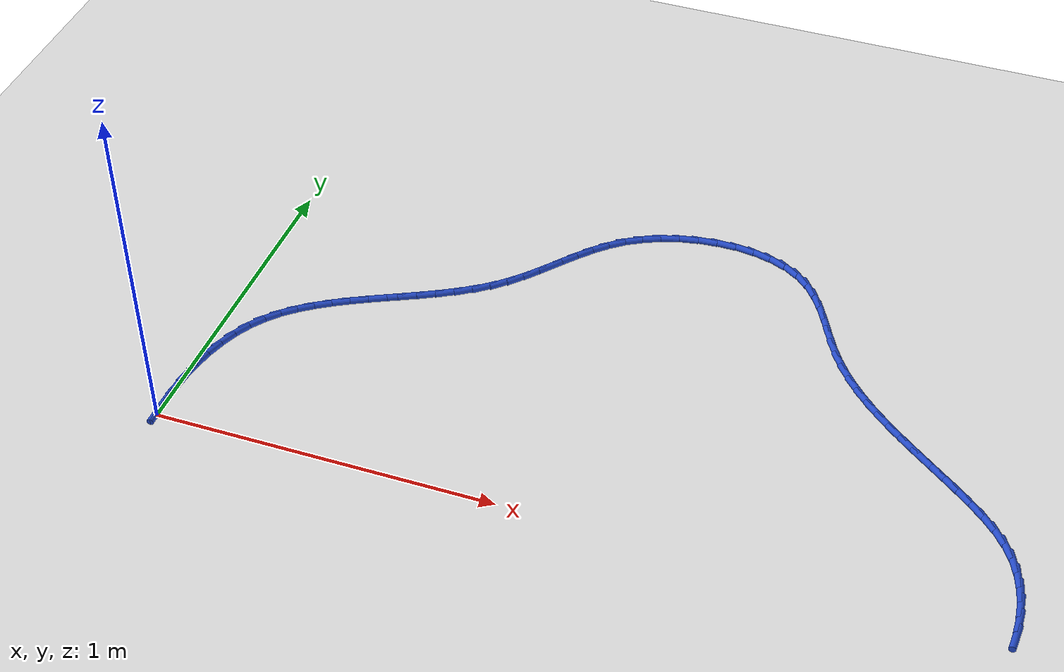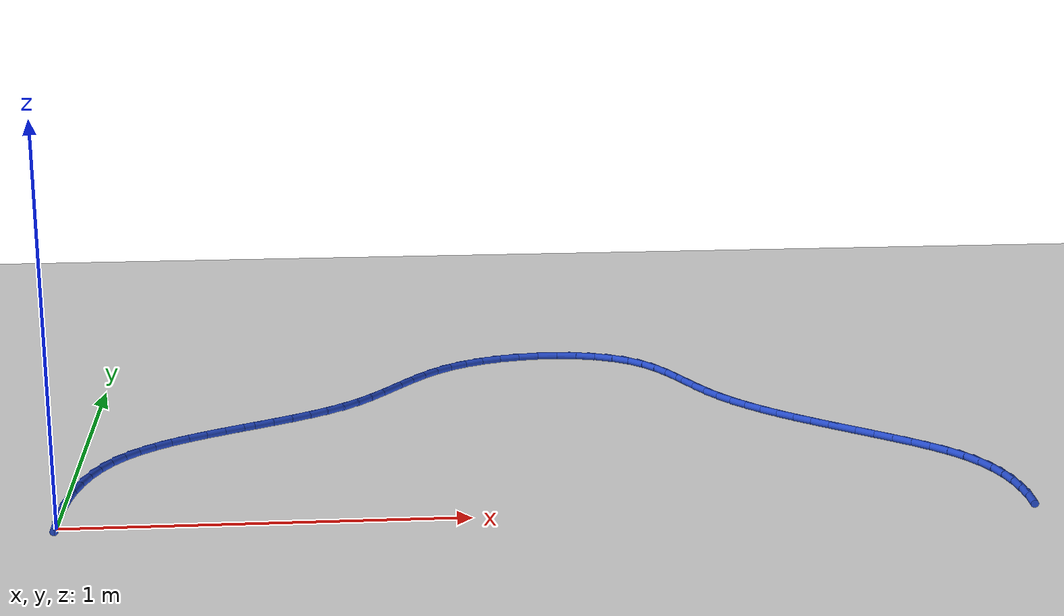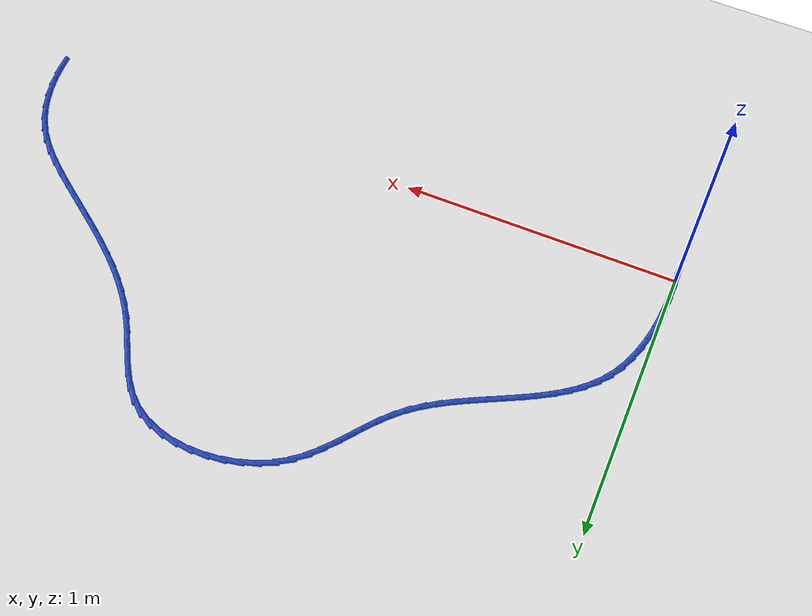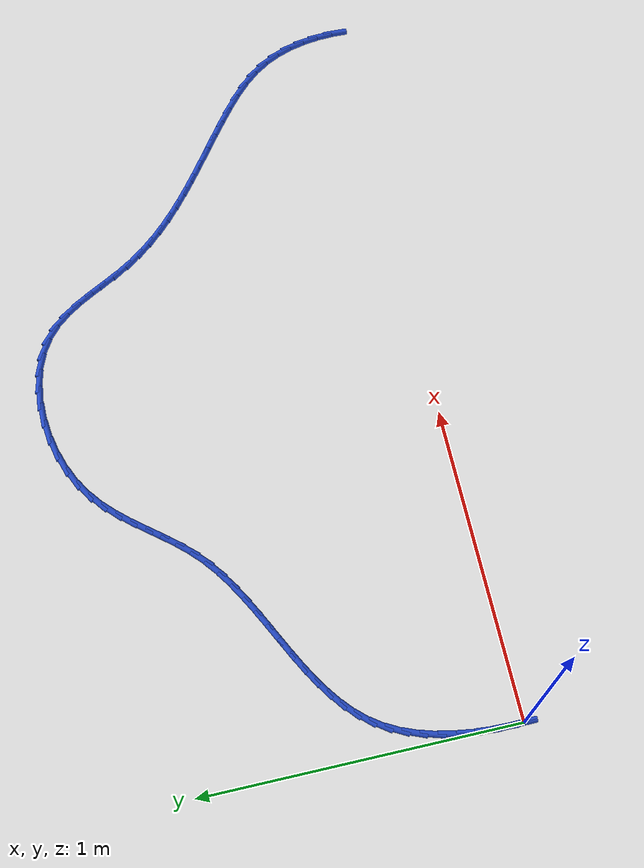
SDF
<sdf version="1.6">
 <world name="default">
  <model name="ground_plane">
   <static>1</static>
   <link name="link">
    <collision name="collision">
     <geometry><plane><normal>0 0 1</normal><size>100 100</size></plane></geometry>
     <surface><friction><ode><mu>100</mu><mu2>50</mu2></ode></friction></surface>
    </collision>
    <visual name="visual">
     <cast_shadows>0</cast_shadows>
     <geometry><plane><normal>0 0 1</normal><size>100 100</size></plane></geometry>
     <material>
      <script><uri>file://media/materials/scripts/gazebo.material</uri><name>Gazebo/WhiteGlow</name></script>
     </material>
    </visual>
   </link>
  </model>
  <model name="line">
   <link name="link_0">
    <pose>-3.209238430557093e-17 -2.7755575615628914e-17 0.01 0 1.57 -1.5614146785968823</pose>
    <collision name="collision">
     <geometry><cylinder><radius>0.01</radius><length>0.08</length></cylinder></geometry>
    </collision>
    <visual name="visual">
     <material>
      <script><name>Gazebo/Blue</name><uri>file://media/materials/scripts/gazebo.material</uri></script>
     </material>
     <geometry><cylinder><radius>0.01</radius><length>0.08</length></cylinder></geometry>
    </visual>
   </link>
   <link name="link_1">
    <pose>-0.0005205562509979723 0.055485024338224574 0.01 0 1.57 1.5336357734559047</pose>
    <collision name="collision">
     <geometry><cylinder><radius>0.01</radius><length>0.08</length></cylinder></geometry>
    </collision>
    <visual name="visual">
     <material>
      <script><name>Gazebo/Blue</name><uri>file://media/materials/scripts/gazebo.material</uri></script>
     </material>
     <geometry><cylinder><radius>0.01</radius><length>0.08</length></cylinder></geometry>
    </visual>
   </link>
   <link name="link_2">
    <pose>0.001552704836371046 0.11125132722052263 0.01 0 1.57 1.4807161224466192</pose>
    <collision name="collision">
     <geometry><cylinder><radius>0.01</radius><length>0.08</length></cylinder></geometry>
    </collision>
    <visual name="visual">
     <material>
      <script><name>Gazebo/Blue</name><uri>file://media/materials/scripts/gazebo.material</uri></script>
     </material>
     <geometry><cylinder><radius>0.01</radius><length>0.08</length></cylinder></geometry>
    </visual>
   </link>
   <link name="link_3">
    <pose>0.006558838137702357 0.16667510590002396 0.01 0 1.57 1.4199414933770682</pose>
    <collision name="collision">
     <geometry><cylinder><radius>0.01</radius><length>0.08</length></cylinder></geometry>
    </collision>
    <visual name="visual">
     <material>
      <script><name>Gazebo/Blue</name><uri>file://media/materials/scripts/gazebo.material</uri></script>
     </material>
     <geometry><cylinder><radius>0.01</radius><length>0.08</length></cylinder></geometry>
    </visual>
   </link>
   <link name="link_4">
    <pose>0.014836898528591292 0.2211325576298585 0.01 0 1.57 1.349591802387273</pose>
    <collision name="collision">
     <geometry><cylinder><radius>0.01</radius><length>0.08</length></cylinder></geometry>
    </collision>
    <visual name="visual">
     <material>
      <script><name>Gazebo/Blue</name><uri>file://media/materials/scripts/gazebo.material</uri></script>
     </material>
     <geometry><cylinder><radius>0.01</radius><length>0.08</length></cylinder></geometry>
    </visual>
   </link>
   <link name="link_5">
    <pose>0.026725940884633204 0.2739998796631563 0.01 0 1.57 1.2677335016240336</pose>
    <collision name="collision">
     <geometry><cylinder><radius>0.01</radius><length>0.08</length></cylinder></geometry>
    </collision>
    <visual name="visual">
     <material>
      <script><name>Gazebo/Blue</name><uri>file://media/materials/scripts/gazebo.material</uri></script>
     </material>
     <geometry><cylinder><radius>0.01</radius><length>0.08</length></cylinder></geometry>
    </visual>
   </link>
   <link name="link_6">
    <pose>0.04256502008142346 0.32465326925304727 0.01 0 1.57 1.1723580194442573</pose>
    <collision name="collision">
     <geometry><cylinder><radius>0.01</radius><length>0.08</length></cylinder></geometry>
    </collision>
    <visual name="visual">
     <material>
      <script><name>Gazebo/Blue</name><uri>file://media/materials/scripts/gazebo.material</uri></script>
     </material>
     <geometry><cylinder><radius>0.01</radius><length>0.08</length></cylinder></geometry>
    </visual>
   </link>
   <link name="link_7">
    <pose>0.06269319099455734 0.3724689236526614 0.01 0 1.57 1.0617163003641088</pose>
    <collision name="collision">
     <geometry><cylinder><radius>0.01</radius><length>0.08</length></cylinder></geometry>
    </collision>
    <visual name="visual">
     <material>
      <script><name>Gazebo/Blue</name><uri>file://media/materials/scripts/gazebo.material</uri></script>
     </material>
     <geometry><cylinder><radius>0.01</radius><length>0.08</length></cylinder></geometry>
    </visual>
   </link>
   <link name="link_8">
    <pose>0.08744950849963024 0.4168230401151284 0.01 0 1.57 0.9359584628961841</pose>
    <collision name="collision">
     <geometry><cylinder><radius>0.01</radius><length>0.08</length></cylinder></geometry>
    </collision>
    <visual name="visual">
     <material>
      <script><name>Gazebo/Blue</name><uri>file://media/materials/scripts/gazebo.material</uri></script>
     </material>
     <geometry><cylinder><radius>0.01</radius><length>0.08</length></cylinder></geometry>
    </visual>
   </link>
   <link name="link_9">
    <pose>0.1171396823556434 0.45713278753878056 0.01 0 1.57 0.8124300084330521</pose>
    <collision name="collision">
     <geometry><cylinder><radius>0.01</radius><length>0.08</length></cylinder></geometry>
    </collision>
    <visual name="visual">
     <material>
      <script><name>Gazebo/Blue</name><uri>file://media/materials/scripts/gazebo.material</uri></script>
     </material>
     <geometry><cylinder><radius>0.01</radius><length>0.08</length></cylinder></geometry>
    </visual>
   </link>
   <link name="link_10">
    <pose>0.15154909743121658 0.4934546658237896 0.01 0 1.57 0.7070448001785046</pose>
    <collision name="collision">
     <geometry><cylinder><radius>0.01</radius><length>0.08</length></cylinder></geometry>
    </collision>
    <visual name="visual">
     <material>
      <script><name>Gazebo/Blue</name><uri>file://media/materials/scripts/gazebo.material</uri></script>
     </material>
     <geometry><cylinder><radius>0.01</radius><length>0.08</length></cylinder></geometry>
    </visual>
   </link>
   <link name="link_11">
    <pose>0.19005136541638057 0.5263511267547449 0.01 0 1.57 0.6214748167838323</pose>
    <collision name="collision">
     <geometry><cylinder><radius>0.01</radius><length>0.08</length></cylinder></geometry>
    </collision>
    <visual name="visual">
     <material>
      <script><name>Gazebo/Blue</name><uri>file://media/materials/scripts/gazebo.material</uri></script>
     </material>
     <geometry><cylinder><radius>0.01</radius><length>0.08</length></cylinder></geometry>
    </visual>
   </link>
   <link name="link_12">
    <pose>0.23200883649902734 0.556398459292926 0.01 0 1.57 0.5552211963426452</pose>
    <collision name="collision">
     <geometry><cylinder><radius>0.01</radius><length>0.08</length></cylinder></geometry>
    </collision>
    <visual name="visual">
     <material>
      <script><name>Gazebo/Blue</name><uri>file://media/materials/scripts/gazebo.material</uri></script>
     </material>
     <geometry><cylinder><radius>0.01</radius><length>0.08</length></cylinder></geometry>
    </visual>
   </link>
   <link name="link_13">
    <pose>0.27678386086704926 0.5841729523996128 0.01 0 1.57 0.5069662121934</pose>
    <collision name="collision">
     <geometry><cylinder><radius>0.01</radius><length>0.08</length></cylinder></geometry>
    </collision>
    <visual name="visual">
     <material>
      <script><name>Gazebo/Blue</name><uri>file://media/materials/scripts/gazebo.material</uri></script>
     </material>
     <geometry><cylinder><radius>0.01</radius><length>0.08</length></cylinder></geometry>
    </visual>
   </link>
   <link name="link_14">
    <pose>0.32373878870833805 0.6102508950360845 0.01 0 1.57 0.4752760883697195</pose>
    <collision name="collision">
     <geometry><cylinder><radius>0.01</radius><length>0.08</length></cylinder></geometry>
    </collision>
    <visual name="visual">
     <material>
      <script><name>Gazebo/Blue</name><uri>file://media/materials/scripts/gazebo.material</uri></script>
     </material>
     <geometry><cylinder><radius>0.01</radius><length>0.08</length></cylinder></geometry>
    </visual>
   </link>
   <link name="link_15">
    <pose>0.3722359702107862 0.6352085761636213 0.01 0 1.57 0.45898621706773857</pose>
    <collision name="collision">
     <geometry><cylinder><radius>0.01</radius><length>0.08</length></cylinder></geometry>
    </collision>
    <visual name="visual">
     <material>
      <script><name>Gazebo/Blue</name><uri>file://media/materials/scripts/gazebo.material</uri></script>
     </material>
     <geometry><cylinder><radius>0.01</radius><length>0.08</length></cylinder></geometry>
    </visual>
   </link>
   <link name="link_16">
    <pose>0.4216377555622856 0.6596222847435024 0.01 0 1.57 0.4573731121157386</pose>
    <collision name="collision">
     <geometry><cylinder><radius>0.01</radius><length>0.08</length></cylinder></geometry>
    </collision>
    <visual name="visual">
     <material>
      <script><name>Gazebo/Blue</name><uri>file://media/materials/scripts/gazebo.material</uri></script>
     </material>
     <geometry><cylinder><radius>0.01</radius><length>0.08</length></cylinder></geometry>
    </visual>
   </link>
   <link name="link_17">
    <pose>0.47130649495072846 0.6840683097370076 0.01 0 1.57 0.47020806818069877</pose>
    <collision name="collision">
     <geometry><cylinder><radius>0.01</radius><length>0.08</length></cylinder></geometry>
    </collision>
    <visual name="visual">
     <material>
      <script><name>Gazebo/Blue</name><uri>file://media/materials/scripts/gazebo.material</uri></script>
     </material>
     <geometry><cylinder><radius>0.01</radius><length>0.08</length></cylinder></geometry>
    </visual>
   </link>
   <link name="link_18">
    <pose>0.5206045385640068 0.7091229401054167 0.01 0 1.57 0.4977443730266458</pose>
    <collision name="collision">
     <geometry><cylinder><radius>0.01</radius><length>0.08</length></cylinder></geometry>
    </collision>
    <visual name="visual">
     <material>
      <script><name>Gazebo/Blue</name><uri>file://media/materials/scripts/gazebo.material</uri></script>
     </material>
     <geometry><cylinder><radius>0.01</radius><length>0.08</length></cylinder></geometry>
    </visual>
   </link>
   <link name="link_19">
    <pose>0.5688942365900129 0.7353624648100091 0.01 0 1.57 0.5406478338676475</pose>
    <collision name="collision">
     <geometry><cylinder><radius>0.01</radius><length>0.08</length></cylinder></geometry>
    </collision>
    <visual name="visual">
     <material>
      <script><name>Gazebo/Blue</name><uri>file://media/materials/scripts/gazebo.material</uri></script>
     </material>
     <geometry><cylinder><radius>0.01</radius><length>0.08</length></cylinder></geometry>
    </visual>
   </link>
   <link name="link_20">
    <pose>0.6155379392166385 0.7633631728120643 0.01 0 1.57 0.5998438492626406</pose>
    <collision name="collision">
     <geometry><cylinder><radius>0.01</radius><length>0.08</length></cylinder></geometry>
    </collision>
    <visual name="visual">
     <material>
      <script><name>Gazebo/Blue</name><uri>file://media/materials/scripts/gazebo.material</uri></script>
     </material>
     <geometry><cylinder><radius>0.01</radius><length>0.08</length></cylinder></geometry>
    </visual>
   </link>
   <link name="link_21">
    <pose>0.6598979966317762 0.7937013530728624 0.01 0 1.57 0.6762243494167626</pose>
    <collision name="collision">
     <geometry><cylinder><radius>0.01</radius><length>0.08</length></cylinder></geometry>
    </collision>
    <visual name="visual">
     <material>
      <script><name>Gazebo/Blue</name><uri>file://media/materials/scripts/gazebo.material</uri></script>
     </material>
     <geometry><cylinder><radius>0.01</radius><length>0.08</length></cylinder></geometry>
    </visual>
   </link>
   <link name="link_22">
    <pose>0.7013367590233177 0.8269532945536828 0.01 0 1.57 0.7662512962271709</pose>
    <collision name="collision">
     <geometry><cylinder><radius>0.01</radius><length>0.08</length></cylinder></geometry>
    </collision>
    <visual name="visual">
     <material>
      <script><name>Gazebo/Blue</name><uri>file://media/materials/scripts/gazebo.material</uri></script>
     </material>
     <geometry><cylinder><radius>0.01</radius><length>0.08</length></cylinder></geometry>
    </visual>
   </link>
   <link name="link_23">
    <pose>0.7393667247765066 0.8635541394446191 0.01 0 1.57 0.8397741431615209</pose>
    <collision name="collision">
     <geometry><cylinder><radius>0.01</radius><length>0.08</length></cylinder></geometry>
    </collision>
    <visual name="visual">
     <material>
      <script><name>Gazebo/Blue</name><uri>file://media/materials/scripts/gazebo.material</uri></script>
     </material>
     <geometry><cylinder><radius>0.01</radius><length>0.08</length></cylinder></geometry>
    </visual>
   </link>
   <link name="link_24">
    <pose>0.7746300123092579 0.9028771309380333 0.01 0 1.57 0.8827204094085778</pose>
    <collision name="collision">
     <geometry><cylinder><radius>0.01</radius><length>0.08</length></cylinder></geometry>
    </collision>
    <visual name="visual">
     <material>
      <script><name>Gazebo/Blue</name><uri>file://media/materials/scripts/gazebo.material</uri></script>
     </material>
     <geometry><cylinder><radius>0.01</radius><length>0.08</length></cylinder></geometry>
    </visual>
   </link>
   <link name="link_25">
    <pose>0.8082829446928788 0.9438121342847895 0.01 0 1.57 0.8952619379264949</pose>
    <collision name="collision">
     <geometry><cylinder><radius>0.01</radius><length>0.08</length></cylinder></geometry>
    </collision>
    <visual name="visual">
     <material>
      <script><name>Gazebo/Blue</name><uri>file://media/materials/scripts/gazebo.material</uri></script>
     </material>
     <geometry><cylinder><radius>0.01</radius><length>0.08</length></cylinder></geometry>
    </visual>
   </link>
   <link name="link_26">
    <pose>0.8414844448118042 0.9852465707821457 0.01 0 1.57 0.8776323635891689</pose>
    <collision name="collision">
     <geometry><cylinder><radius>0.01</radius><length>0.08</length></cylinder></geometry>
    </collision>
    <visual name="visual">
     <material>
      <script><name>Gazebo/Blue</name><uri>file://media/materials/scripts/gazebo.material</uri></script>
     </material>
     <geometry><cylinder><radius>0.01</radius><length>0.08</length></cylinder></geometry>
    </visual>
   </link>
   <link name="link_27">
    <pose>0.8753934355504674 1.0260678617273593 0.01 0 1.57 0.8297142529982583</pose>
    <collision name="collision">
     <geometry><cylinder><radius>0.01</radius><length>0.08</length></cylinder></geometry>
    </collision>
    <visual name="visual">
     <material>
      <script><name>Gazebo/Blue</name><uri>file://media/materials/scripts/gazebo.material</uri></script>
     </material>
     <geometry><cylinder><radius>0.01</radius><length>0.08</length></cylinder></geometry>
    </visual>
   </link>
   <link name="link_28">
    <pose>0.9111688397933033 1.065163428417688 0.01 0 1.57 0.7515243078582637</pose>
    <collision name="collision">
     <geometry><cylinder><radius>0.01</radius><length>0.08</length></cylinder></geometry>
    </collision>
    <visual name="visual">
     <material>
      <script><name>Gazebo/Blue</name><uri>file://media/materials/scripts/gazebo.material</uri></script>
     </material>
     <geometry><cylinder><radius>0.01</radius><length>0.08</length></cylinder></geometry>
    </visual>
   </link>
   <link name="link_29">
    <pose>0.9499695804247452 1.10142069215039 0.01 0 1.57 0.6445073177646926</pose>
    <collision name="collision">
     <geometry><cylinder><radius>0.01</radius><length>0.08</length></cylinder></geometry>
    </collision>
    <visual name="visual">
     <material>
      <script><name>Gazebo/Blue</name><uri>file://media/materials/scripts/gazebo.material</uri></script>
     </material>
     <geometry><cylinder><radius>0.01</radius><length>0.08</length></cylinder></geometry>
    </visual>
   </link>
   <link name="link_30">
    <pose>0.9929545803292275 1.1337270742227226 0.01 0 1.57 0.5175565829299796</pose>
    <collision name="collision">
     <geometry><cylinder><radius>0.01</radius><length>0.08</length></cylinder></geometry>
    </collision>
    <visual name="visual">
     <material>
      <script><name>Gazebo/Blue</name><uri>file://media/materials/scripts/gazebo.material</uri></script>
     </material>
     <geometry><cylinder><radius>0.01</radius><length>0.08</length></cylinder></geometry>
    </visual>
   </link>
   <link name="link_31">
    <pose>1.0409971290331534 1.1610787503493143 0.01 0 1.57 0.3972609409740882</pose>
    <collision name="collision">
     <geometry><cylinder><radius>0.01</radius><length>0.08</length></cylinder></geometry>
    </collision>
    <visual name="visual">
     <material>
      <script><name>Gazebo/Blue</name><uri>file://media/materials/scripts/gazebo.material</uri></script>
     </material>
     <geometry><cylinder><radius>0.01</radius><length>0.08</length></cylinder></geometry>
    </visual>
   </link>
   <link name="link_32">
    <pose>1.0934056670109984 1.183067709871356 0.01 0 1.57 0.2874267763622139</pose>
    <collision name="collision">
     <geometry><cylinder><radius>0.01</radius><length>0.08</length></cylinder></geometry>
    </collision>
    <visual name="visual">
     <material>
      <script><name>Gazebo/Blue</name><uri>file://media/materials/scripts/gazebo.material</uri></script>
     </material>
     <geometry><cylinder><radius>0.01</radius><length>0.08</length></cylinder></geometry>
    </visual>
   </link>
   <link name="link_33">
    <pose>1.1489554911547633 1.1994889356462266 0.01 0 1.57 0.18322525600787415</pose>
    <collision name="collision">
     <geometry><cylinder><radius>0.01</radius><length>0.08</length></cylinder></geometry>
    </collision>
    <visual name="visual">
     <material>
      <script><name>Gazebo/Blue</name><uri>file://media/materials/scripts/gazebo.material</uri></script>
     </material>
     <geometry><cylinder><radius>0.01</radius><length>0.08</length></cylinder></geometry>
    </visual>
   </link>
   <link name="link_34">
    <pose>1.2064214488750622 1.2101375816705808 0.01 0 1.57 0.08014888149802434</pose>
    <collision name="collision">
     <geometry><cylinder><radius>0.01</radius><length>0.08</length></cylinder></geometry>
    </collision>
    <visual name="visual">
     <material>
      <script><name>Gazebo/Blue</name><uri>file://media/materials/scripts/gazebo.material</uri></script>
     </material>
     <geometry><cylinder><radius>0.01</radius><length>0.08</length></cylinder></geometry>
    </visual>
   </link>
   <link name="link_35">
    <pose>1.2645783875825094 1.214808801941074 0.01 0 1.57 -0.026217159379498946</pose>
    <collision name="collision">
     <geometry><cylinder><radius>0.01</radius><length>0.08</length></cylinder></geometry>
    </collision>
    <visual name="visual">
     <material>
      <script><name>Gazebo/Blue</name><uri>file://media/materials/scripts/gazebo.material</uri></script>
     </material>
     <geometry><cylinder><radius>0.01</radius><length>0.08</length></cylinder></geometry>
    </visual>
   </link>
   <link name="link_36">
    <pose>1.3222011546877188 1.2132977504543603 0.01 0 1.57 -0.14045259051549788</pose>
    <collision name="collision">
     <geometry><cylinder><radius>0.01</radius><length>0.08</length></cylinder></geometry>
    </collision>
    <visual name="visual">
     <material>
      <script><name>Gazebo/Blue</name><uri>file://media/materials/scripts/gazebo.material</uri></script>
     </material>
     <geometry><cylinder><radius>0.01</radius><length>0.08</length></cylinder></geometry>
    </visual>
   </link>
   <link name="link_37">
    <pose>1.378064597601305 1.2053995812070954 0.01 0 1.57 -0.2674590836290405</pose>
    <collision name="collision">
     <geometry><cylinder><radius>0.01</radius><length>0.08</length></cylinder></geometry>
    </collision>
    <visual name="visual">
     <material>
      <script><name>Gazebo/Blue</name><uri>file://media/materials/scripts/gazebo.material</uri></script>
     </material>
     <geometry><cylinder><radius>0.01</radius><length>0.08</length></cylinder></geometry>
    </visual>
   </link>
   <link name="link_38">
    <pose>1.430943563733882 1.1909094481959344 0.01 0 1.57 -0.41230882356067794</pose>
    <collision name="collision">
     <geometry><cylinder><radius>0.01</radius><length>0.08</length></cylinder></geometry>
    </collision>
    <visual name="visual">
     <material>
      <script><name>Gazebo/Blue</name><uri>file://media/materials/scripts/gazebo.material</uri></script>
     </material>
     <geometry><cylinder><radius>0.01</radius><length>0.08</length></cylinder></geometry>
    </visual>
   </link>
   <link name="link_39">
    <pose>1.4796129004960654 1.1696225054175322 0.01 0 1.57 -0.5793958451532532</pose>
    <collision name="collision">
     <geometry><cylinder><radius>0.01</radius><length>0.08</length></cylinder></geometry>
    </collision>
    <visual name="visual">
     <material>
      <script><name>Gazebo/Blue</name><uri>file://media/materials/scripts/gazebo.material</uri></script>
     </material>
     <geometry><cylinder><radius>0.01</radius><length>0.08</length></cylinder></geometry>
    </visual>
   </link>
   <link name="link_40">
    <pose>1.5228474552984674 1.1413339068685437 0.01 0 1.57 -0.7629888693921749</pose>
    <collision name="collision">
     <geometry><cylinder><radius>0.01</radius><length>0.08</length></cylinder></geometry>
    </collision>
    <visual name="visual">
     <material>
      <script><name>Gazebo/Blue</name><uri>file://media/materials/scripts/gazebo.material</uri></script>
     </material>
     <geometry><cylinder><radius>0.01</radius><length>0.08</length></cylinder></geometry>
    </visual>
   </link>
   <link name="link_41">
    <pose>1.559747424344777 1.106051758923441 0.01 0 1.57 -0.9165399849671361</pose>
    <collision name="collision">
     <geometry><cylinder><radius>0.01</radius><length>0.08</length></cylinder></geometry>
    </collision>
    <visual name="visual">
     <material>
      <script><name>Gazebo/Blue</name><uri>file://media/materials/scripts/gazebo.material</uri></script>
     </material>
     <geometry><cylinder><radius>0.01</radius><length>0.08</length></cylinder></geometry>
    </visual>
   </link>
   <link name="link_42">
    <pose>1.5912447236465708 1.064983093838367 0.01 0 1.57 -1.0218100722397259</pose>
    <collision name="collision">
     <geometry><cylinder><radius>0.01</radius><length>0.08</length></cylinder></geometry>
    </collision>
    <visual name="visual">
     <material>
      <script><name>Gazebo/Blue</name><uri>file://media/materials/scripts/gazebo.material</uri></script>
     </material>
     <geometry><cylinder><radius>0.01</radius><length>0.08</length></cylinder></geometry>
    </visual>
   </link>
   <link name="link_43">
    <pose>1.6189117652239255 1.0197541713290272 0.01 0 1.57 -1.0818738497053646</pose>
    <collision name="collision">
     <geometry><cylinder><radius>0.01</radius><length>0.08</length></cylinder></geometry>
    </collision>
    <visual name="visual">
     <material>
      <script><name>Gazebo/Blue</name><uri>file://media/materials/scripts/gazebo.material</uri></script>
     </material>
     <geometry><cylinder><radius>0.01</radius><length>0.08</length></cylinder></geometry>
    </visual>
   </link>
   <link name="link_44">
    <pose>1.6443216359157502 0.9719916928040988 0.01 0 1.57 -1.1007403865240946</pose>
    <collision name="collision">
     <geometry><cylinder><radius>0.01</radius><length>0.08</length></cylinder></geometry>
    </collision>
    <visual name="visual">
     <material>
      <script><name>Gazebo/Blue</name><uri>file://media/materials/scripts/gazebo.material</uri></script>
     </material>
     <geometry><cylinder><radius>0.01</radius><length>0.08</length></cylinder></geometry>
    </visual>
   </link>
   <link name="link_45">
    <pose>1.6690474225609546 0.9233223596722601 0.01 0 1.57 -1.0801616823141802</pose>
    <collision name="collision">
     <geometry><cylinder><radius>0.01</radius><length>0.08</length></cylinder></geometry>
    </collision>
    <visual name="visual">
     <material>
      <script><name>Gazebo/Blue</name><uri>file://media/materials/scripts/gazebo.material</uri></script>
     </material>
     <geometry><cylinder><radius>0.01</radius><length>0.08</length></cylinder></geometry>
    </visual>
   </link>
   <link name="link_46">
    <pose>1.6946622119984491 0.8753728733421883 0.01 0 1.57 -1.0205826761909955</pose>
    <collision name="collision">
     <geometry><cylinder><radius>0.01</radius><length>0.08</length></cylinder></geometry>
    </collision>
    <visual name="visual">
     <material>
      <script><name>Gazebo/Blue</name><uri>file://media/materials/scripts/gazebo.material</uri></script>
     </material>
     <geometry><cylinder><radius>0.01</radius><length>0.08</length></cylinder></geometry>
    </visual>
   </link>
   <link name="link_47">
    <pose>1.722675600399228 0.8297037759648401 0.01 0 1.57 -0.9460123651644902</pose>
    <collision name="collision">
     <geometry><cylinder><radius>0.01</radius><length>0.08</length></cylinder></geometry>
    </collision>
    <visual name="visual">
     <material>
      <script><name>Gazebo/Blue</name><uri>file://media/materials/scripts/gazebo.material</uri></script>
     </material>
     <geometry><cylinder><radius>0.01</radius><length>0.08</length></cylinder></geometry>
    </visual>
   </link>
   <link name="link_48">
    <pose>1.753594053122094 0.7868303160738275 0.01 0 1.57 -0.8780204696650113</pose>
    <collision name="collision">
     <geometry><cylinder><radius>0.01</radius><length>0.08</length></cylinder></geometry>
    </collision>
    <visual name="visual">
     <material>
      <script><name>Gazebo/Blue</name><uri>file://media/materials/scripts/gazebo.material</uri></script>
     </material>
     <geometry><cylinder><radius>0.01</radius><length>0.08</length></cylinder></geometry>
    </visual>
   </link>
   <link name="link_49">
    <pose>1.787123719113368 0.7464337875204291 0.01 0 1.57 -0.8182772562882528</pose>
    <collision name="collision">
     <geometry><cylinder><radius>0.01</radius><length>0.08</length></cylinder></geometry>
    </collision>
    <visual name="visual">
     <material>
      <script><name>Gazebo/Blue</name><uri>file://media/materials/scripts/gazebo.material</uri></script>
     </material>
     <geometry><cylinder><radius>0.01</radius><length>0.08</length></cylinder></geometry>
    </visual>
   </link>
   <link name="link_50">
    <pose>1.822948469370452 0.7081722698377785 0.01 0 1.57 -0.7674219136471415</pose>
    <collision name="collision">
     <geometry><cylinder><radius>0.01</radius><length>0.08</length></cylinder></geometry>
    </collision>
    <visual name="visual">
     <material>
      <script><name>Gazebo/Blue</name><uri>file://media/materials/scripts/gazebo.material</uri></script>
     </material>
     <geometry><cylinder><radius>0.01</radius><length>0.08</length></cylinder></geometry>
    </visual>
   </link>
   <link name="link_51">
    <pose>1.8607521748907452 0.6717038425590107 0.01 0 1.57 -0.7257342585869346</pose>
    <collision name="collision">
     <geometry><cylinder><radius>0.01</radius><length>0.08</length></cylinder></geometry>
    </collision>
    <visual name="visual">
     <material>
      <script><name>Gazebo/Blue</name><uri>file://media/materials/scripts/gazebo.material</uri></script>
     </material>
     <geometry><cylinder><radius>0.01</radius><length>0.08</length></cylinder></geometry>
    </visual>
   </link>
   <link name="link_52">
    <pose>1.90021870667165 0.636686585217259 0.01 0 1.57 -0.6932467980313803</pose>
    <collision name="collision">
     <geometry><cylinder><radius>0.01</radius><length>0.08</length></cylinder></geometry>
    </collision>
    <visual name="visual">
     <material>
      <script><name>Gazebo/Blue</name><uri>file://media/materials/scripts/gazebo.material</uri></script>
     </material>
     <geometry><cylinder><radius>0.01</radius><length>0.08</length></cylinder></geometry>
    </visual>
   </link>
   <link name="link_53">
    <pose>1.9410319357105663 0.6027785773456585 0.01 0 1.57 -0.6698495700601332</pose>
    <collision name="collision">
     <geometry><cylinder><radius>0.01</radius><length>0.08</length></cylinder></geometry>
    </collision>
    <visual name="visual">
     <material>
      <script><name>Gazebo/Blue</name><uri>file://media/materials/scripts/gazebo.material</uri></script>
     </material>
     <geometry><cylinder><radius>0.01</radius><length>0.08</length></cylinder></geometry>
    </visual>
   </link>
   <link name="link_54">
    <pose>1.9828757330048945 0.569637898477343 0.01 0 1.57 -0.6553732182516595</pose>
    <collision name="collision">
     <geometry><cylinder><radius>0.01</radius><length>0.08</length></cylinder></geometry>
    </collision>
    <visual name="visual">
     <material>
      <script><name>Gazebo/Blue</name><uri>file://media/materials/scripts/gazebo.material</uri></script>
     </material>
     <geometry><cylinder><radius>0.01</radius><length>0.08</length></cylinder></geometry>
    </visual>
   </link>
   <link name="link_55">
    <pose>2.025433969552037 0.5369226281454463 0.01 0 1.57 -0.6496462161907598</pose>
    <collision name="collision">
     <geometry><cylinder><radius>0.01</radius><length>0.08</length></cylinder></geometry>
    </collision>
    <visual name="visual">
     <material>
      <script><name>Gazebo/Blue</name><uri>file://media/materials/scripts/gazebo.material</uri></script>
     </material>
     <geometry><cylinder><radius>0.01</radius><length>0.08</length></cylinder></geometry>
    </visual>
   </link>
   <link name="link_56">
    <pose>2.068390516349393 0.5042908458831037 0.01 0 1.57 -0.6525276133169537</pose>
    <collision name="collision">
     <geometry><cylinder><radius>0.01</radius><length>0.08</length></cylinder></geometry>
    </collision>
    <visual name="visual">
     <material>
      <script><name>Gazebo/Blue</name><uri>file://media/materials/scripts/gazebo.material</uri></script>
     </material>
     <geometry><cylinder><radius>0.01</radius><length>0.08</length></cylinder></geometry>
    </visual>
   </link>
   <link name="link_57">
    <pose>2.1114292443943645 0.47140063122344816 0.01 0 1.57 -0.6639183233076539</pose>
    <collision name="collision">
     <geometry><cylinder><radius>0.01</radius><length>0.08</length></cylinder></geometry>
    </collision>
    <visual name="visual">
     <material>
      <script><name>Gazebo/Blue</name><uri>file://media/materials/scripts/gazebo.material</uri></script>
     </material>
     <geometry><cylinder><radius>0.01</radius><length>0.08</length></cylinder></geometry>
    </visual>
   </link>
   <link name="link_58">
    <pose>2.154234021318339 0.4379100634044573 0.01 0 1.57 -0.6863994606707727</pose>
    <collision name="collision">
     <geometry><cylinder><radius>0.01</radius><length>0.08</length></cylinder></geometry>
    </collision>
    <visual name="visual">
     <material>
      <script><name>Gazebo/Blue</name><uri>file://media/materials/scripts/gazebo.material</uri></script>
     </material>
     <geometry><cylinder><radius>0.01</radius><length>0.08</length></cylinder></geometry>
    </visual>
   </link>
   <link name="link_59">
    <pose>2.196283127843759 0.4034591942544183 0.01 0 1.57 -0.7304318759320905</pose>
    <collision name="collision">
     <geometry><cylinder><radius>0.01</radius><length>0.08</length></cylinder></geometry>
    </collision>
    <visual name="visual">
     <material>
      <script><name>Gazebo/Blue</name><uri>file://media/materials/scripts/gazebo.material</uri></script>
     </material>
     <geometry><cylinder><radius>0.01</radius><length>0.08</length></cylinder></geometry>
    </visual>
   </link>
   <link name="link_60">
    <pose>2.2362942783079824 0.3676213834085697 0.01 0 1.57 -0.8009228601122274</pose>
    <collision name="collision">
     <geometry><cylinder><radius>0.01</radius><length>0.08</length></cylinder></geometry>
    </collision>
    <visual name="visual">
     <material>
      <script><name>Gazebo/Blue</name><uri>file://media/materials/scripts/gazebo.material</uri></script>
     </material>
     <geometry><cylinder><radius>0.01</radius><length>0.08</length></cylinder></geometry>
    </visual>
   </link>
   <link name="link_61">
    <pose>2.272809346515641 0.32995457147892565 0.01 0 1.57 -0.9019165357560492</pose>
    <collision name="collision">
     <geometry><cylinder><radius>0.01</radius><length>0.08</length></cylinder></geometry>
    </collision>
    <visual name="visual">
     <material>
      <script><name>Gazebo/Blue</name><uri>file://media/materials/scripts/gazebo.material</uri></script>
     </material>
     <geometry><cylinder><radius>0.01</radius><length>0.08</length></cylinder></geometry>
    </visual>
   </link>
   <link name="link_62">
    <pose>2.304375941757252 0.2900187177753706 0.01 0 1.57 -1.0251819050125464</pose>
    <collision name="collision">
     <geometry><cylinder><radius>0.01</radius><length>0.08</length></cylinder></geometry>
    </collision>
    <visual name="visual">
     <material>
      <script><name>Gazebo/Blue</name><uri>file://media/materials/scripts/gazebo.material</uri></script>
     </material>
     <geometry><cylinder><radius>0.01</radius><length>0.08</length></cylinder></geometry>
    </visual>
   </link>
   <link name="link_63">
    <pose>2.3301377684848146 0.24758358702899258 0.01 0 1.57 -1.1468155536647162</pose>
    <collision name="collision">
     <geometry><cylinder><radius>0.01</radius><length>0.08</length></cylinder></geometry>
    </collision>
    <visual name="visual">
     <material>
      <script><name>Gazebo/Blue</name><uri>file://media/materials/scripts/gazebo.material</uri></script>
     </material>
     <geometry><cylinder><radius>0.01</radius><length>0.08</length></cylinder></geometry>
    </visual>
   </link>
   <link name="link_64">
    <pose>2.350346995640582 0.2028090861399407 0.01 0 1.57 -1.260747888259988</pose>
    <collision name="collision">
     <geometry><cylinder><radius>0.01</radius><length>0.08</length></cylinder></geometry>
    </collision>
    <visual name="visual">
     <material>
      <script><name>Gazebo/Blue</name><uri>file://media/materials/scripts/gazebo.material</uri></script>
     </material>
     <geometry><cylinder><radius>0.01</radius><length>0.08</length></cylinder></geometry>
    </visual>
   </link>
   <link name="link_65">
    <pose>2.3653765343338704 0.15589761918474596 0.01 0 1.57 -1.364488635618397</pose>
    <collision name="collision">
     <geometry><cylinder><radius>0.01</radius><length>0.08</length></cylinder></geometry>
    </collision>
    <visual name="visual">
     <material>
      <script><name>Gazebo/Blue</name><uri>file://media/materials/scripts/gazebo.material</uri></script>
     </material>
     <geometry><cylinder><radius>0.01</radius><length>0.08</length></cylinder></geometry>
    </visual>
   </link>
   <link name="link_66">
    <pose>2.3755992956739993 0.10705159023993915 0.01 0 1.57 -1.4568378301633322</pose>
    <collision name="collision">
     <geometry><cylinder><radius>0.01</radius><length>0.08</length></cylinder></geometry>
    </collision>
    <visual name="visual">
     <material>
      <script><name>Gazebo/Blue</name><uri>file://media/materials/scripts/gazebo.material</uri></script>
     </material>
     <geometry><cylinder><radius>0.01</radius><length>0.08</length></cylinder></geometry>
    </visual>
   </link>
   <link name="link_67">
    <pose>2.381388190770284 0.056473403382052256 0.01 0 1.57 -1.5376476936461079</pose>
    <collision name="collision">
     <geometry><cylinder><radius>0.01</radius><length>0.08</length></cylinder></geometry>
    </collision>
    <visual name="visual">
     <material>
      <script><name>Gazebo/Blue</name><uri>file://media/materials/scripts/gazebo.material</uri></script>
     </material>
     <geometry><cylinder><radius>0.01</radius><length>0.08</length></cylinder></geometry>
    </visual>
   </link>
   <link name="link_68">
    <pose>2.383116130732043 0.0043654626876157045 0.01 0 1.57 1.5341309393264688</pose>
    <collision name="collision">
     <geometry><cylinder><radius>0.01</radius><length>0.08</length></cylinder></geometry>
    </collision>
    <visual name="visual">
     <material>
      <script><name>Gazebo/Blue</name><uri>file://media/materials/scripts/gazebo.material</uri></script>
     </material>
     <geometry><cylinder><radius>0.01</radius><length>0.08</length></cylinder></geometry>
    </visual>
   </link>
   <link name="link_140">
    <pose>-4.9439619065339e-17 1.6653345369377348e-16 0.01 0 1.57 -1.5602668453284751</pose>
    <collision name="collision">
     <geometry><cylinder><radius>0.01</radius><length>0.08</length></cylinder></geometry>
    </collision>
    <visual name="visual">
     <material>
      <script><name>Gazebo/Blue</name><uri>file://media/materials/scripts/gazebo.material</uri></script>
     </material>
     <geometry><cylinder><radius>0.01</radius><length>0.08</length></cylinder></geometry>
    </visual>
   </link>
   <link name="link_141">
    <pose>-0.0005853832792878915 0.055592637413707395 0.01 0 1.57 -1.5602668453284747</pose>
    <collision name="collision">
     <geometry><cylinder><radius>0.01</radius><length>0.08</length></cylinder></geometry>
    </collision>
    <visual name="visual">
     <material>
      <script><name>Gazebo/Blue</name><uri>file://media/materials/scripts/gazebo.material</uri></script>
     </material>
     <geometry><cylinder><radius>0.01</radius><length>0.08</length></cylinder></geometry>
    </visual>
   </link>
  </model>
 </world>
</sdf>
